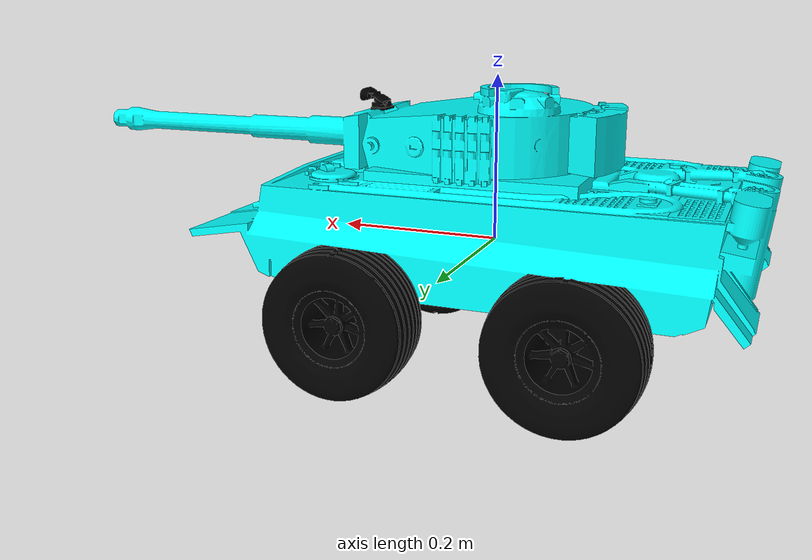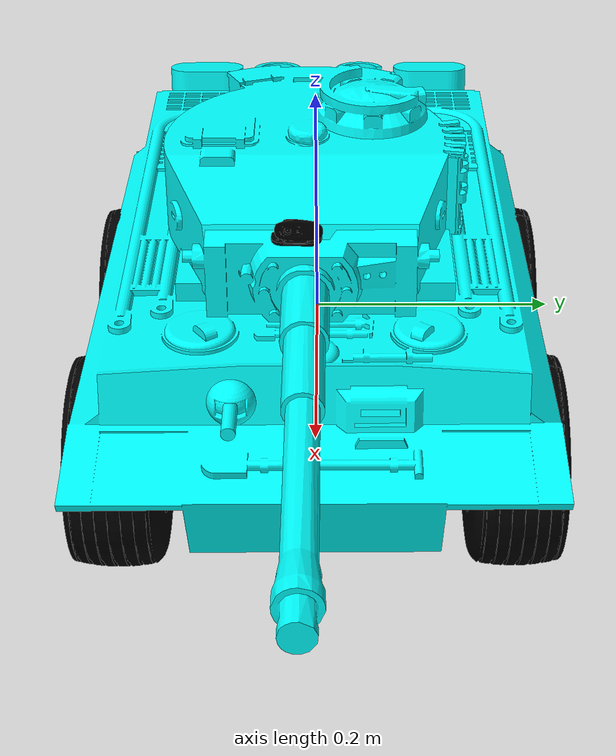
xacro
<?xml version="1.0"?>
<robot name="Tanker" xmlns:xacro="http://ros.org/wiki/xacro">

  <link name="base_footprint">
  </link>

  <link name="base_link">
    <visual>
      <origin xyz="0.025 -0.185 0.03" rpy="1.57075 0 3.142"/>
      <geometry>
        <mesh filename="package://automonomus_projek/mesh/tiger_1_hull_h1.stl" scale="0.01 0.01 0.01"/>
      </geometry>
      <material name="Cyan">
        <color rgba="0 1.0 1.0 1.0"/>
      </material>
    </visual>
    <collision>
      <origin xyz="0 0 0" rpy="0 0 0"/>
      <geometry>
        <box size="0.5 0.3 0.15"/>
      </geometry>
    </collision>
    <inertial>
      <origin xyz="0 0 0" rpy="0 0 0"/>
      <mass value="10"/>
      <inertia ixx="1.0"  ixy="0"  ixz="0" iyy="1.0" iyz="0" izz="1.0" />
    </inertial>
  </link>

  <link name="neck_link">
    <visual>
      <origin xyz="0 0 0" rpy="0 0 0"/>
      <geometry>
       <box size="0.25 0.22 0.02"/>
      </geometry>
      <material name="Cyan">
        <color rgba="0 1.0 1.0 1.0"/>
      </material>
    </visual>
    <collision>
      <origin xyz="0 0 0" rpy="0 1.57075 0"/>
      <geometry>
        <sphere radius="0.1"/>
      </geometry>
    </collision>
    <inertial>
      <origin xyz="0 0 0" rpy="0 1.57075 0"/>
      <mass value="10"/>
      <inertia ixx="1.0"  ixy="0"  ixz="0" iyy="1.0" iyz="0" izz="1.0" />
    </inertial>
  </link>

  <link name="head_link">
    <visual>
      <origin xyz="-0.15 0.21 0.09" rpy="1.57075 0 1.57075"/>
      <geometry>
        <mesh filename="package://automonomus_projek/mesh/Tiger_1_turret_top.stl" scale="0.01 0.01 0.01"/>
      </geometry>
      <material name="Cyan">
        <color rgba="0 1.0 1.0 1.0"/>
      </material>
    </visual>
    <collision>
      <origin xyz="0 0 0" rpy="0 0 0"/>
      <geometry>
        <sphere radius="0.1"/>
      </geometry>
    </collision>
    <inertial>
      <origin xyz="0 0 0" rpy="0 0 0"/>
      <mass value="10"/>
      <inertia ixx="1.0"  ixy="0"  ixz="0" iyy="1.0" iyz="0" izz="1.0" />
    </inertial>
  </link>

  <link name="camera_link">
    <visual>
      <origin rpy="1.57075 0 1.57075" xyz="-0.04 -0.01 0"/>
      <geometry>
      <mesh filename="package://automonomus_projek/mesh/Logitech c270 Assembly.stl" scale="0.0005 0.0005 0.0005"/>
      </geometry>
      <material name="Black">
        <color rgba="0 0 0 1"/>
      </material>
    </visual>
    <inertial>
      <origin rpy="1.57075 0 0" xyz="0 0 0"/>
      <mass value="10"/>
      <inertia ixx="1.0"  ixy="0"  ixz="0" iyy="1.0" iyz="0" izz="1.0" />
    </inertial>
  </link>

  <link name="front_right_wheel">
    <visual>
      <origin rpy="1.57075 0 3.142" xyz="0 -0.085 0"/>
      <geometry>
      <mesh filename="package://automonomus_projek/mesh/front_rw.STL" scale="0.28 0.28 0.28"/>
      </geometry>
      <material name="Black">
        <color rgba="0 0 0 1"/>
      </material>
    </visual>
    <collision>
      <origin rpy="1.57075 0 0" xyz="0 0 0"/>
      <geometry>
        <cylinder length="0.05" radius="0.11"/>
      </geometry>
    </collision>
    <inertial>
      <origin rpy="1.57075 0 0" xyz="0 0 0"/>
      <mass value="10"/>
      <inertia ixx="1.0"  ixy="0"  ixz="0" iyy="1.0" iyz="0" izz="1.0" />
    </inertial>
  </link>

	<!-- < FRONT LEFT WHEEL>-->
  <link name="front_left_wheel">
    <visual>
      <origin rpy="-1.57075 0 3.142" xyz="0 0.085 0"/>
      <geometry>
      <mesh filename="package://automonomus_projek/mesh/front_rw.STL" scale="0.28 0.28 0.28"/>
      </geometry>
      <material name="Black">
        <color rgba="0 0 0 1"/>
      </material>
    </visual>
    <collision>
      <origin rpy="1.57075 0 0" xyz="0 0 0"/>
      <geometry>
        <cylinder length="0.05" radius="0.11"/>
      </geometry>
    </collision>
    <inertial>
      <origin rpy="1.57075 0 0" xyz="0 0 0"/>
      <mass value="10"/>
      <inertia ixx="1.0"  ixy="0"  ixz="0" iyy="1.0" iyz="0" izz="1.0" />
    </inertial>
  </link>

  <link name="rear_right_wheel">
    <visual>
      <origin rpy="1.57075 0 3.142" xyz="0 -0.085 0"/>
      <geometry>
      <mesh filename="package://automonomus_projek/mesh/front_rw.STL" scale="0.28 0.28 0.28"/>
      </geometry>
      <material name="Black">
        <color rgba="0 0 0 1"/>
      </material>
    </visual>
    <collision>
      <origin rpy="1.57075 0 0" xyz="0 0 0"/>
      <geometry>
        <cylinder length="0.05" radius="0.11"/>
      </geometry>
    </collision>
    <inertial>
      <origin rpy="1.57075 0 0" xyz="0 0 0"/>
      <mass value="10"/>
      <inertia ixx="1.0"  ixy="0"  ixz="0" iyy="1.0" iyz="0" izz="1.0" />
    </inertial>
  </link>

  <link name="rear_left_wheel">
    <visual>
      <origin rpy="-1.57075 0 3.142" xyz="0 0.085 0"/>
      <geometry>
      <mesh filename="package://automonomus_projek/mesh/front_rw.STL" scale="0.28 0.28 0.28"/>
      </geometry>
       <material name="Black">
        <color rgba="0 0 0 1"/>
      </material>
    </visual>
    <collision>
      <origin rpy="1.57075 0 0" xyz="0 0 0"/>
      <geometry>
        <cylinder length="0.05" radius="0.11"/>
      </geometry>
    </collision>
    <inertial>
      <origin rpy="1.57075 0 0" xyz="0 0 0"/>
      <mass value="10"/>
      <inertia ixx="1.0"  ixy="0"  ixz="0" iyy="1.0" iyz="0" izz="1.0" />
    </inertial>
  </link>

<!-- Joint -->

  <joint name="footprint_to_base" type="fixed">
    <origin rpy="0 0 0" xyz="0 0 0"/>
    <parent link="base_footprint"/>
    <child link="base_link"/>
  </joint>

  <joint name="neck_to_base" type="fixed">
    <origin rpy="0 0 0" xyz="0 0 0.085"/>
    <parent link="base_link"/>
    <child link="neck_link"/>
  </joint>

  <joint name="camera_to_head" type="fixed">
    <origin rpy="0 0 0" xyz="0.17 -0.01 0.08"/>
    <parent link="head_link"/>
    <child link="camera_link"/>
  </joint>

  <joint name="head_to_base" type="continuous">
    <origin rpy="0 0 0" xyz="0 0 0.085"/>
    <parent link="base_link"/>
    <child link="head_link"/>
    <axis xyz="0 0 1"/>
  </joint>

  <joint name="base_to_front_right_wheel" type="continuous">
    <origin rpy="0 0 0" xyz="0.13 0.175 -0.07"/>
    <parent link="base_link"/>
    <child link="front_right_wheel"/>
    <axis xyz="0 1 0"/>
  </joint>

  <joint name="base_to_front_left_wheel" type="continuous">
    <origin rpy="0 0 0" xyz="0.13 -0.175 -0.07"/>
    <parent link="base_link"/>
    <child link="front_left_wheel"/>
    <axis xyz="0 1 0"/>
  </joint>

  <joint name="base_to_rear_right_wheel" type="continuous">
    <origin rpy="0 0 0" xyz="-0.13 0.175 -0.07"/>
    <parent link="base_link"/>
    <child link="rear_right_wheel"/>
    <axis xyz="0 1 0"/>
  </joint>

  <joint name="base_to_rear_left_wheel" type="continuous">
    <origin rpy="0 0 0" xyz="-0.13 -0.175 -0.07"/>
    <parent link="base_link"/>
    <child link="rear_left_wheel"/>
    <axis xyz="0 1 0"/>
  </joint>

<!-- Transmission -->
  <transmission name="front_left_wheel_transmission">
    <type> transmission_interface/SimpleTransmission </type>
    <joint name="base_to_front_left_wheel">
      <hardwareInterface>VelocityJointInterface</hardwareInterface>
    </joint>
    <actuator name="front_left_wheel_actuator">
      <mechanicalReduction>7</mechanicalReduction>
    </actuator>
  </transmission>

  <transmission name="front_right_wheel_transmission">
    <type> transmission_interface/SimpleTransmission </type>
    <joint name="base_to_front_right_wheel">
      <hardwareInterface>VelocityJointInterface</hardwareInterface>
    </joint>
    <actuator name="front_right_wheel_actuator">
      <mechanicalReduction>7</mechanicalReduction>
    </actuator>
  </transmission>

  <transmission name="rear_right_wheel_transmission">
    <type> transmission_interface/SimpleTransmission </type>
    <joint name="base_to_rear_right_wheel">
      <hardwareInterface>VelocityJointInterface</hardwareInterface>
    </joint>
    <actuator name="rear_right_wheel_actuator">
      <mechanicalReduction>7</mechanicalReduction>
    </actuator>
  </transmission>

  <transmission name="rear_left_wheel_transmission">
    <type> transmission_interface/SimpleTransmission </type>
    <joint name="base_to_rear_left_wheel">
      <hardwareInterface>VelocityJointInterface</hardwareInterface>
    </joint>
    <actuator name="rear_left_wheel_actuator">
      <mechanicalReduction>7</mechanicalReduction>
    </actuator>
  </transmission>

  <transmission name="head_swivel_trans">
    <type>transmission_interface/SimpleTransmission</type>
    <actuator name="$head_swivel_motor">
      <mechanicalReduction>1</mechanicalReduction>
    </actuator>
    <joint name="head_to_base">
      <hardwareInterface>PositionJointInterface</hardwareInterface>
    </joint>
  </transmission>

<!-- Gazebo Camera plugin -->
 <gazebo reference="camera_link">
    <sensor type="camera" name="camera1">
      <update_rate>30.0</update_rate>
      <camera name="head">
        <horizontal_fov>1.3962634</horizontal_fov>
        <image>
          <width>800</width>
          <height>800</height>
          <format>R8G8B8</format>
        </image>
        <clip>
          <near>0.02</near>
          <far>300</far>
        </clip>
        <noise>
          <type>gaussian</type>
          <!-- Noise is sampled independently per pixel on each frame.
               That pixel's noise value is added to each of its color
               channels, which at that point lie in the range [0,1]. -->
          <mean>0.0</mean>
          <stddev>0.007</stddev>
        </noise>
      </camera>
      <plugin name="camera_controller" filename="libgazebo_ros_camera.so">
        <alwaysOn>true</alwaysOn>
        <updateRate>0.0</updateRate>
        <cameraName>tank/camera1</cameraName>
        <imageTopicName>image_raw</imageTopicName>
        <cameraInfoTopicName>camera_info</cameraInfoTopicName>
        <frameName>camera_link</frameName>
        <hackBaseline>0.07</hackBaseline>
        <distortionK1>0.0</distortionK1>
        <distortionK2>0.0</distortionK2>
        <distortionK3>0.0</distortionK3>
        <distortionT1>0.0</distortionT1>
        <distortionT2>0.0</distortionT2>
      </plugin>
    </sensor>
  </gazebo>

<!-- Gazebo plugin for ROS Control -->
  <gazebo>
    <plugin name="gazebo_ros_control" filename="libgazebo_ros_control.so">
      <robotNamespace>/</robotNamespace>
    </plugin>
  </gazebo>

</robot>
